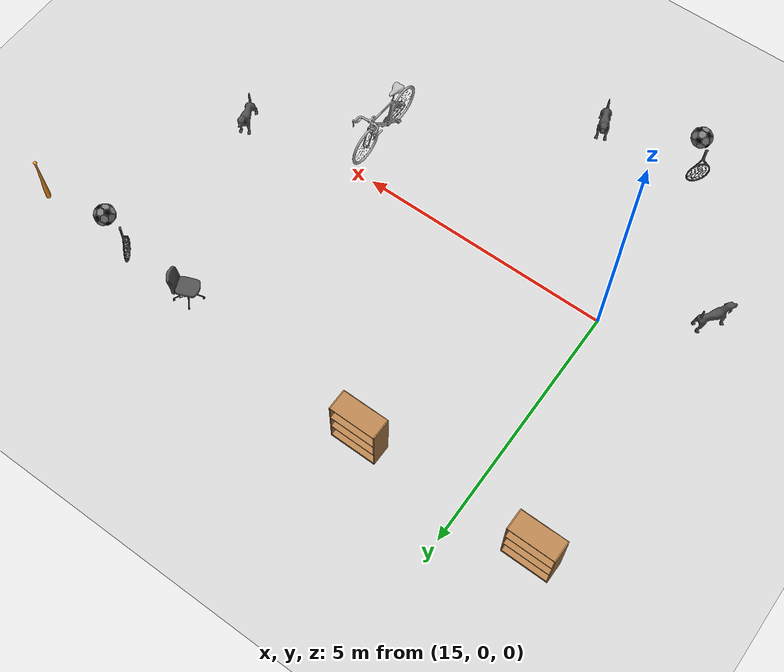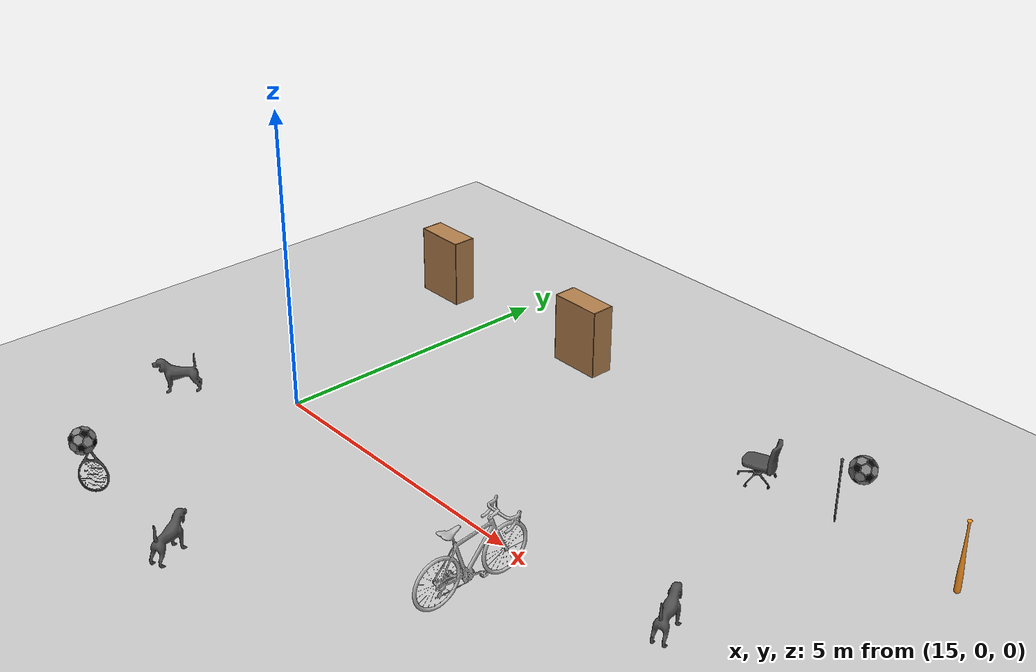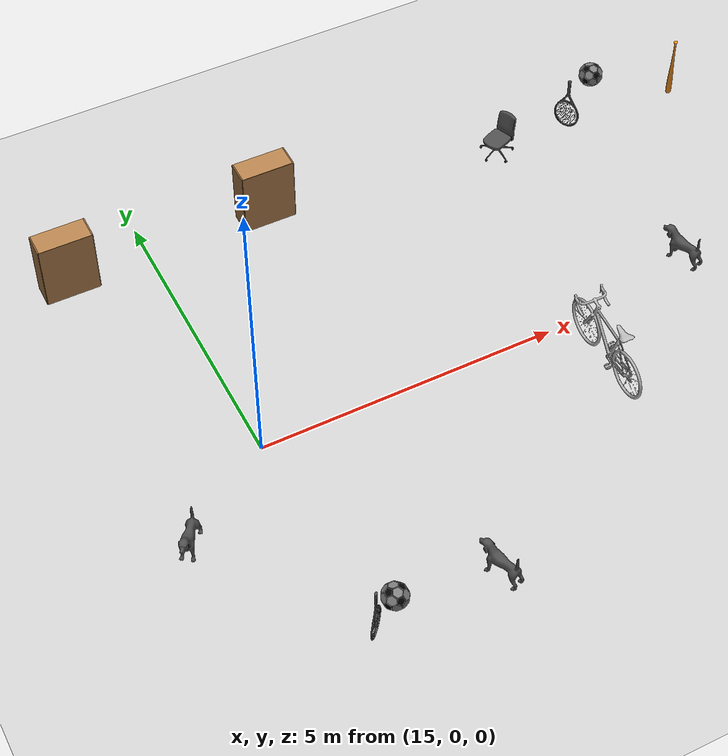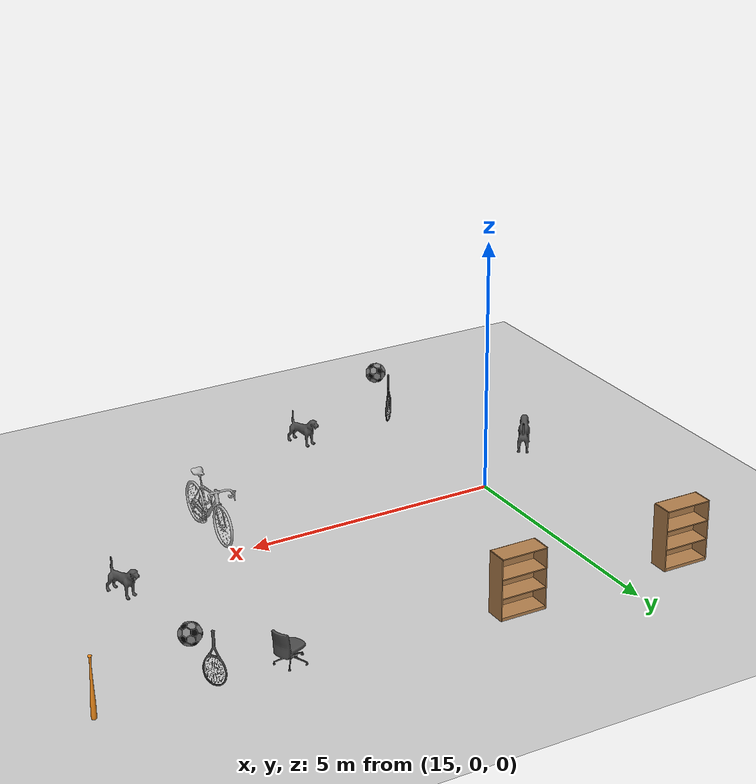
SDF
<sdf version="1.6">
 <world name="default">
  <model name="ground_plane">
   <static>1</static>
   <link name="link">
    <collision name="collision">
     <geometry><plane><normal>0 0 1</normal><size>100 100</size></plane></geometry>
     <surface><friction><ode><mu>100</mu><mu2>50</mu2></ode></friction></surface>
    </collision>
    <visual name="visual">
     <cast_shadows>0</cast_shadows>
     <geometry><plane><normal>0 0 1</normal><size>100 100</size></plane></geometry>
     <material>
      <script><uri>file://media/materials/scripts/gazebo.material</uri><name>Gazebo/Grey</name></script>
     </material>
    </visual>
   </link>
  </model>
  <model name="extra_dog_beagle">
   <static>1</static>
   <link name="link">
    <visual name="visual">
     <geometry>
      <mesh><scale>0.1 0.1 0.1</scale><uri>model://extra_dog_beagle/meshes/Beagle.stl</uri></mesh>
     </geometry>
     <material>
      <script><uri>file://media/materials/scipts/gazebo.material</uri><name>Gazebo/DarkGrey</name></script>
     </material>
    </visual>
   </link>
   <pose>17.1064 -3.56688 0 0 0 -2.7623</pose>
  </model>
  <model name="bookshelf_clone_0_clone_clone_0">
   <static>1</static>
   <link name="link">
    <inertial><mass>1</mass></inertial>
    <collision name="back">
     <pose>0 0.005 0.6 0 -0 0</pose>
     <geometry><box><size>0.9 0.01 1.2</size></box></geometry>
    </collision>
    <visual name="visual1">
     <pose>0 0.005 0.6 0 -0 0</pose>
     <geometry><box><size>0.9 0.01 1.2</size></box></geometry>
     <material>
      <script><uri>file://media/materials/scripts/gazebo.material</uri><name>Gazebo/Wood</name></script>
     </material>
    </visual>
    <collision name="left_side">
     <pose>0.45 -0.195 0.6 0 -0 0</pose>
     <geometry><box><size>0.02 0.4 1.2</size></box></geometry>
    </collision>
    <visual name="visual2">
     <pose>0.45 -0.195 0.6 0 -0 0</pose>
     <geometry><box><size>0.02 0.4 1.2</size></box></geometry>
     <material>
      <script><uri>file://media/materials/scripts/gazebo.material</uri><name>Gazebo/Wood</name></script>
     </material>
    </visual>
    <collision name="right_side">
     <pose>-0.45 -0.195 0.6 0 -0 0</pose>
     <geometry><box><size>0.02 0.4 1.2</size></box></geometry>
    </collision>
    <visual name="visual3">
     <pose>-0.45 -0.195 0.6 0 -0 0</pose>
     <geometry><box><size>0.02 0.4 1.2</size></box></geometry>
     <material>
      <script><uri>file://media/materials/scripts/gazebo.material</uri><name>Gazebo/Wood</name></script>
     </material>
    </visual>
    <collision name="bottom">
     <pose>0 -0.195 0.03 0 -0 0</pose>
     <geometry><box><size>0.88 0.4 0.06</size></box></geometry>
    </collision>
    <visual name="visual4">
     <pose>0 -0.195 0.03 0 -0 0</pose>
     <geometry><box><size>0.88 0.4 0.06</size></box></geometry>
     <material>
      <script><uri>file://media/materials/scripts/gazebo.material</uri><name>Gazebo/Wood</name></script>
     </material>
    </visual>
    <collision name="top">
     <pose>0 -0.195 1.19 0 -0 0</pose>
     <geometry><box><size>0.88 0.4 0.02</size></box></geometry>
    </collision>
    <visual name="visual5">
     <pose>0 -0.195 1.19 0 -0 0</pose>
     <geometry><box><size>0.88 0.4 0.02</size></box></geometry>
     <material>
      <script><uri>file://media/materials/scripts/gazebo.material</uri><name>Gazebo/Wood</name></script>
     </material>
    </visual>
    <collision name="low_shelf">
     <pose>0 -0.195 0.43 0 -0 0</pose>
     <geometry><box><size>0.88 0.4 0.02</size></box></geometry>
    </collision>
    <visual name="visual6">
     <pose>0 -0.195 0.43 0 -0 0</pose>
     <geometry><box><size>0.88 0.4 0.02</size></box></geometry>
     <material>
      <script><uri>file://media/materials/scripts/gazebo.material</uri><name>Gazebo/Wood</name></script>
     </material>
    </visual>
    <collision name="high_shelf">
     <pose>0 -0.195 0.8 0 -0 0</pose>
     <geometry><box><size>0.88 0.4 0.02</size></box></geometry>
    </collision>
    <visual name="visual7">
     <pose>0 -0.195 0.8 0 -0 0</pose>
     <geometry><box><size>0.88 0.4 0.02</size></box></geometry>
     <material>
      <script><uri>file://media/materials/scripts/gazebo.material</uri><name>Gazebo/Wood</name></script>
     </material>
    </visual>
   </link>
   <pose>17.0903 4.15341 0 0 -0 3.1361</pose>
  </model>
  <model name="extra_dog_beagle_clone_0">
   <static>1</static>
   <link name="link">
    <visual name="visual">
     <geometry>
      <mesh><scale>0.1 0.1 0.1</scale><uri>model://extra_dog_beagle/meshes/Beagle.stl</uri></mesh>
     </geometry>
     <material>
      <script><uri>file://media/materials/scipts/gazebo.material</uri><name>Gazebo/DarkGrey</name></script>
     </material>
    </visual>
   </link>
   <pose>22.7292 0.359827 0 0 0 -2.7623</pose>
  </model>
  <model name="bookshelf_clone_0_clone_clone_0_clone">
   <static>1</static>
   <link name="link">
    <inertial><mass>1</mass></inertial>
    <collision name="back">
     <pose>0 0.005 0.6 0 -0 0</pose>
     <geometry><box><size>0.9 0.01 1.2</size></box></geometry>
    </collision>
    <visual name="visual1">
     <pose>0 0.005 0.6 0 -0 0</pose>
     <geometry><box><size>0.9 0.01 1.2</size></box></geometry>
     <material>
      <script><uri>file://media/materials/scripts/gazebo.material</uri><name>Gazebo/Wood</name></script>
     </material>
    </visual>
    <collision name="left_side">
     <pose>0.45 -0.195 0.6 0 -0 0</pose>
     <geometry><box><size>0.02 0.4 1.2</size></box></geometry>
    </collision>
    <visual name="visual2">
     <pose>0.45 -0.195 0.6 0 -0 0</pose>
     <geometry><box><size>0.02 0.4 1.2</size></box></geometry>
     <material>
      <script><uri>file://media/materials/scripts/gazebo.material</uri><name>Gazebo/Wood</name></script>
     </material>
    </visual>
    <collision name="right_side">
     <pose>-0.45 -0.195 0.6 0 -0 0</pose>
     <geometry><box><size>0.02 0.4 1.2</size></box></geometry>
    </collision>
    <visual name="visual3">
     <pose>-0.45 -0.195 0.6 0 -0 0</pose>
     <geometry><box><size>0.02 0.4 1.2</size></box></geometry>
     <material>
      <script><uri>file://media/materials/scripts/gazebo.material</uri><name>Gazebo/Wood</name></script>
     </material>
    </visual>
    <collision name="bottom">
     <pose>0 -0.195 0.03 0 -0 0</pose>
     <geometry><box><size>0.88 0.4 0.06</size></box></geometry>
    </collision>
    <visual name="visual4">
     <pose>0 -0.195 0.03 0 -0 0</pose>
     <geometry><box><size>0.88 0.4 0.06</size></box></geometry>
     <material>
      <script><uri>file://media/materials/scripts/gazebo.material</uri><name>Gazebo/Wood</name></script>
     </material>
    </visual>
    <collision name="top">
     <pose>0 -0.195 1.19 0 -0 0</pose>
     <geometry><box><size>0.88 0.4 0.02</size></box></geometry>
    </collision>
    <visual name="visual5">
     <pose>0 -0.195 1.19 0 -0 0</pose>
     <geometry><box><size>0.88 0.4 0.02</size></box></geometry>
     <material>
      <script><uri>file://media/materials/scripts/gazebo.material</uri><name>Gazebo/Wood</name></script>
     </material>
    </visual>
    <collision name="low_shelf">
     <pose>0 -0.195 0.43 0 -0 0</pose>
     <geometry><box><size>0.88 0.4 0.02</size></box></geometry>
    </collision>
    <visual name="visual6">
     <pose>0 -0.195 0.43 0 -0 0</pose>
     <geometry><box><size>0.88 0.4 0.02</size></box></geometry>
     <material>
      <script><uri>file://media/materials/scripts/gazebo.material</uri><name>Gazebo/Wood</name></script>
     </material>
    </visual>
    <collision name="high_shelf">
     <pose>0 -0.195 0.8 0 -0 0</pose>
     <geometry><box><size>0.88 0.4 0.02</size></box></geometry>
    </collision>
    <visual name="visual7">
     <pose>0 -0.195 0.8 0 -0 0</pose>
     <geometry><box><size>0.88 0.4 0.02</size></box></geometry>
     <material>
      <script><uri>file://media/materials/scripts/gazebo.material</uri><name>Gazebo/Wood</name></script>
     </material>
    </visual>
   </link>
   <pose>13.6105 4.13722 0 0 -0 3.1361</pose>
  </model>
  <model name="extra_ball_clone_clone">
   <link name="link">
    <visual name="visual">
     <geometry><mesh><scale>0.2 0.2 0.2</scale><uri>model://extra_ball/meshes/Ball DAE.dae</uri></mesh></geometry>
    </visual>
   </link>
   <static>1</static>
   <pose>23.0362 3.89522 1.06947 0 -0 0</pose>
  </model>
  <model name="extra_ball_clone_clone_0">
   <link name="link">
    <visual name="visual">
     <geometry><mesh><scale>0.2 0.2 0.2</scale><uri>model://extra_ball/meshes/Ball DAE.dae</uri></mesh></geometry>
    </visual>
   </link>
   <static>1</static>
   <pose>15.2837 -3.77873 1.06947 0 -0 0</pose>
  </model>
  <model name="extra_tennis_racket_clone_clone">
   <static>1</static>
   <link name="link">
    <visual name="visual">
     <geometry>
      <mesh><scale>0.015 0.015 0.015</scale><uri>model://extra_tennis_racket/meshes/tennis_racket.dae</uri></mesh>
     </geometry>
     <material>
      <script><uri>file://media/materials/scipts/gazebo.material</uri><name>Gazebo/DarkGrey</name></script>
     </material>
    </visual>
   </link>
   <pose>15.0741 -3.60241 0.679138 -1.57253 0.001864 -2.31916</pose>
  </model>
  <model name="extra_office_chair_v2_clone_clone">
   <static>1</static>
   <link name="link">
    <visual name="visual">
     <geometry>
      <mesh>
       <scale>0.0025 0.0025 0.0025</scale>
       <uri>model://extra_office_chair_v2/meshes/OfficeChair.dae</uri>
      </mesh>
     </geometry>
     <material>
      <script><uri>file://media/materials/scripts/gazebo.material</uri><name>Gazebo/DarkGrey</name></script>
     </material>
    </visual>
   </link>
   <pose>21.2589 3.90111 0 1.57142 -0.00025 0.380567</pose>
  </model>
  <model name="extra_tennis_racket_clone_clone_0">
   <static>1</static>
   <link name="link">
    <visual name="visual">
     <geometry>
      <mesh><scale>0.015 0.015 0.015</scale><uri>model://extra_tennis_racket/meshes/tennis_racket.dae</uri></mesh>
     </geometry>
     <material>
      <script><uri>file://media/materials/scipts/gazebo.material</uri><name>Gazebo/DarkGrey</name></script>
     </material>
    </visual>
   </link>
   <pose>22.6475 3.93151 0.679138 -1.56939 0.002121 -0.984904</pose>
  </model>
  <model name="extra_baseball_bat_clone_clone">
   <static>1</static>
   <link name="link">
    <visual name="visual">
     <geometry>
      <mesh><scale>0.015 0.015 0.015</scale><uri>model://extra_baseball_bat/meshes/baseball_bat.dae</uri></mesh>
     </geometry>
     <material>
      <script><uri>file://media/materials/scipts/gazebo.material</uri><name>Gazebo/Orange</name></script>
     </material>
    </visual>
   </link>
   <pose>24.6785 3.85256 0.428584 0 1.56827 0</pose>
  </model>
  <model name="extra_bicycle_clone_clone">
   <static>1</static>
   <link name="link">
    <visual name="visual">
     <geometry>
      <mesh><scale>0.01 0.01 0.01</scale><uri>model://extra_bicycle/meshes/10489_bicycle_L2.dae</uri></mesh>
     </geometry>
     <material>
      <script>
       <uri>model://extra_bicycle/materials/scripts</uri>
       <uri>model://extra_bicycle/materials/textures</uri>
       <name>extra_bicycle/image_1</name>
      </script>
     </material>
    </visual>
   </link>
   <pose>20.4264 -0.926361 0 0 -0 0</pose>
  </model>
  <model name="extra_dog_beagle_clone_1">
   <static>1</static>
   <link name="link">
    <visual name="visual">
     <geometry>
      <mesh><scale>0.1 0.1 0.1</scale><uri>model://extra_dog_beagle/meshes/Beagle.stl</uri></mesh>
     </geometry>
     <material>
      <script><uri>file://media/materials/scipts/gazebo.material</uri><name>Gazebo/DarkGrey</name></script>
     </material>
    </visual>
   </link>
   <pose>13.3616 -1.14114 0 0 0 -0.623221</pose>
  </model>
 </world>
</sdf>
